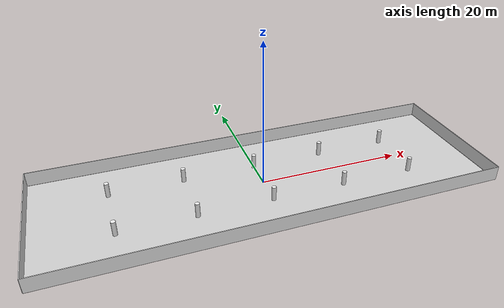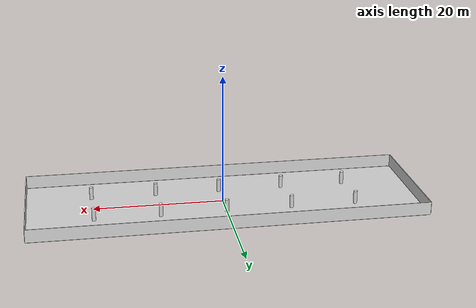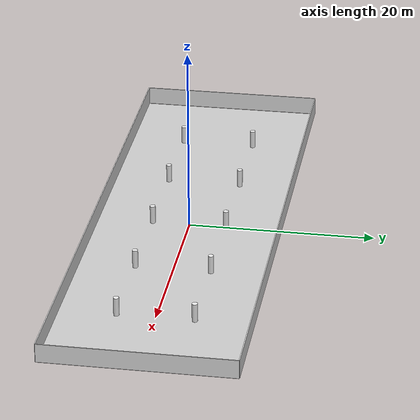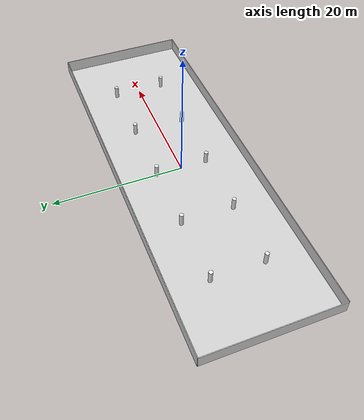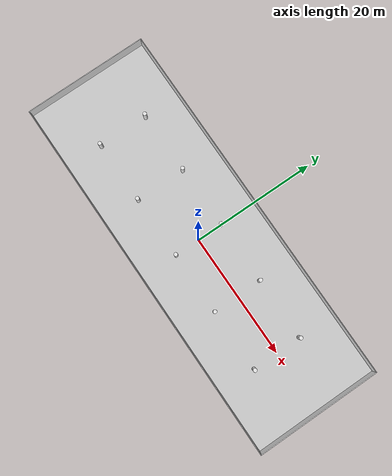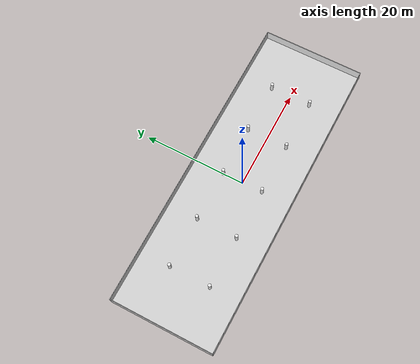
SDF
<sdf version="1.7">
 <world name="simple">
  <gravity>0.0 0.0 -9.81</gravity>
  <physics type="ode">
   <real_time_update_rate>1000</real_time_update_rate>
   <max_step_size>0.001</max_step_size>
   <real_time_factor>1.0</real_time_factor>
   <ode>
    <solver><iters>100</iters></solver>
    <constraints><contact_surface_layer>0.01</contact_surface_layer></constraints>
   </ode>
  </physics>
  <scene><shadows>true</shadows><grid>false</grid></scene>
  <include><name>light_1</name><uri>model://light</uri><pose>20 0 7 0 0 0</pose></include>
  <include><name>light_2</name><uri>model://light</uri><pose>0 0 7 0 0 0</pose></include>
  <include><name>light_3</name><uri>model://light</uri><pose>-20 0 7 0 0 0</pose></include>
  <include><uri>model://atrium</uri></include>
 </world>
</sdf>

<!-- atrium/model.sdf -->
<sdf version="1.7">
  <model name="plane">
    <static>true</static>
    <link name="floor">
      <collision name="collision">
        <geometry>
          <plane>
            <normal>0 0 1</normal>
            <size>60 20</size>
          </plane>
        </geometry>
        <surface>
          <friction>
            <ode>
              <mu>100.0</mu>
              <mu2>100.0</mu2>
            </ode>
          </friction>
        </surface>
      </collision>
      <visual name="visual">
        <cast_shadows>true</cast_shadows>
        <geometry>
          <plane>
            <normal>0 0 1</normal>
            <size>60 20</size>
          </plane>
        </geometry>
        <material>
          <script>
            <uri>model://atrium</uri>
            <name>Truck/Ground</name>
          </script>
        </material>
      </visual>
    </link>
    <link name="wall_north">
      <pose>30 0 1 0 0 0</pose>
      <collision name="collision">
        <geometry>
          <box>
            <size>0.10 20 2</size>
          </box>
        </geometry>
      </collision>
      <visual name="visual">
        <cast_shadows>true</cast_shadows>
        <geometry>
          <box>
            <size>0.10 20 2</size>
          </box>
        </geometry>
        <material>
          <script>
            <uri>file://media/materials/scripts/gazebo.material</uri>
            <name>Gazebo/White</name>
          </script>
        </material>
      </visual>
    </link>
    <link name="wall_south">
      <pose>-30 0 1 0 0 0</pose>
      <collision name="collision">
        <geometry>
          <box>
            <size>0.10 20 2</size>
          </box>
        </geometry>
      </collision>
      <visual name="visual">
        <cast_shadows>true</cast_shadows>
        <geometry>
          <box>
            <size>0.10 20 2</size>
          </box>
        </geometry>
        <material>
          <script>
            <uri>file://media/materials/scripts/gazebo.material</uri>
            <name>Gazebo/White</name>
          </script>
        </material>
      </visual>
    </link>
    <link name="wall_east">
      <pose>0 10 1 0 0 0</pose>
      <collision name="collision">
        <geometry>
          <box>
            <size>60.0 0.1 2.0</size>
          </box>
        </geometry>
      </collision>
      <visual name="visual">
        <cast_shadows>true</cast_shadows>
        <geometry>
          <box>
            <size>60.0 0.1 2.0</size>
          </box>
        </geometry>
        <material>
          <script>
            <uri>file://media/materials/scripts/gazebo.material</uri>
            <name>Gazebo/White</name>
          </script>
        </material>
      </visual>
    </link>
    <link name="wall_west">
      <pose>0 -10 1 0 0 0</pose>
      <collision name="collision">
        <geometry>
          <box>
            <size>60.0 0.1 2.0</size>
          </box>
        </geometry>
      </collision>
      <visual name="visual">
        <cast_shadows>true</cast_shadows>
        <geometry>
          <box>
            <size>60.0 0.1 2.0</size>
          </box>
        </geometry>
        <material>
          <script>
            <uri>file://media/materials/scripts/gazebo.material</uri>
            <name>Gazebo/White</name>
          </script>
        </material>
      </visual>
    </link>
    <link name="column_11">
      <pose>20 4 1 0 0 0</pose>
      <collision name="collision">
        <geometry>
          <cylinder>
            <length>2</length>
            <radius>0.3</radius>
          </cylinder>
        </geometry>
      </collision>
      <visual name="visual">
        <cast_shadows>true</cast_shadows>
        <geometry>
          <cylinder>
            <length>2</length>
            <radius>0.3</radius>
          </cylinder>
        </geometry>
        <material>
          <script>
            <uri>file://media/materials/scripts/gazebo.material</uri>
            <name>Gazebo/White</name>
          </script>
        </material>
      </visual>
    </link>
    <link name="column_12">
      <pose>20 -4 1 0 0 0</pose>
      <collision name="collision">
        <geometry>
          <cylinder>
            <length>2</length>
            <radius>0.3</radius>
          </cylinder>
        </geometry>
      </collision>
      <visual name="visual">
        <cast_shadows>true</cast_shadows>
        <geometry>
          <cylinder>
            <length>2</length>
            <radius>0.3</radius>
          </cylinder>
        </geometry>
        <material>
          <script>
            <uri>file://media/materials/scripts/gazebo.material</uri>
            <name>Gazebo/White</name>
          </script>
        </material>
      </visual>
    </link>
    <link name="column_21">
      <pose>10 4 1 0 0 0</pose>
      <collision name="collision">
        <geometry>
          <cylinder>
            <length>2</length>
            <radius>0.3</radius>
          </cylinder>
        </geometry>
      </collision>
      <visual name="visual">
        <cast_shadows>true</cast_shadows>
        <geometry>
          <cylinder>
            <length>2</length>
            <radius>0.3</radius>
          </cylinder>
        </geometry>
        <material>
          <script>
            <uri>file://media/materials/scripts/gazebo.material</uri>
            <name>Gazebo/White</name>
          </script>
        </material>
      </visual>
    </link>
    <link name="column_22">
      <pose>10 -4 1 0 0 0</pose>
      <collision name="collision">
        <geometry>
          <cylinder>
            <length>2</length>
            <radius>0.3</radius>
          </cylinder>
        </geometry>
      </collision>
      <visual name="visual">
        <cast_shadows>true</cast_shadows>
        <geometry>
          <cylinder>
            <length>2</length>
            <radius>0.3</radius>
          </cylinder>
        </geometry>
        <material>
          <script>
            <uri>file://media/materials/scripts/gazebo.material</uri>
            <name>Gazebo/White</name>
          </script>
        </material>
      </visual>
    </link>
    <link name="column_31">
      <pose>0 4 1 0 0 0</pose>
      <collision name="collision">
        <geometry>
          <cylinder>
            <length>2</length>
            <radius>0.3</radius>
          </cylinder>
        </geometry>
      </collision>
      <visual name="visual">
        <cast_shadows>true</cast_shadows>
        <geometry>
          <cylinder>
            <length>2</length>
            <radius>0.3</radius>
          </cylinder>
        </geometry>
        <material>
          <script>
            <uri>file://media/materials/scripts/gazebo.material</uri>
            <name>Gazebo/White</name>
          </script>
        </material>
      </visual>
    </link>
    <link name="column_32">
      <pose>0 -4 1 0 0 0</pose>
      <collision name="collision">
        <geometry>
          <cylinder>
            <length>2</length>
            <radius>0.3</radius>
          </cylinder>
        </geometry>
      </collision>
      <visual name="visual">
        <cast_shadows>true</cast_shadows>
        <geometry>
          <cylinder>
            <length>2</length>
            <radius>0.3</radius>
          </cylinder>
        </geometry>
        <material>
          <script>
            <uri>file://media/materials/scripts/gazebo.material</uri>
            <name>Gazebo/White</name>
          </script>
        </material>
      </visual>
    </link>
    <link name="column_41">
      <pose>-10 4 1 0 0 0</pose>
      <collision name="collision">
        <geometry>
          <cylinder>
            <length>2</length>
            <radius>0.3</radius>
          </cylinder>
        </geometry>
      </collision>
      <visual name="visual">
        <cast_shadows>true</cast_shadows>
        <geometry>
          <cylinder>
            <length>2</length>
            <radius>0.3</radius>
          </cylinder>
        </geometry>
        <material>
          <script>
            <uri>file://media/materials/scripts/gazebo.material</uri>
            <name>Gazebo/White</name>
          </script>
        </material>
      </visual>
    </link>
    <link name="column_42">
      <pose>-10 -4 1 0 0 0</pose>
      <collision name="collision">
        <geometry>
          <cylinder>
            <length>2</length>
            <radius>0.3</radius>
          </cylinder>
        </geometry>
      </collision>
      <visual name="visual">
        <cast_shadows>true</cast_shadows>
        <geometry>
          <cylinder>
            <length>2</length>
            <radius>0.3</radius>
          </cylinder>
        </geometry>
        <material>
          <script>
            <uri>file://media/materials/scripts/gazebo.material</uri>
            <name>Gazebo/White</name>
          </script>
        </material>
      </visual>
    </link>
    <link name="column_51">
      <pose>-20 4 1 0 0 0</pose>
      <collision name="collision">
        <geometry>
          <cylinder>
            <length>2</length>
            <radius>0.3</radius>
          </cylinder>
        </geometry>
      </collision>
      <visual name="visual">
        <cast_shadows>true</cast_shadows>
        <geometry>
          <cylinder>
            <length>2</length>
            <radius>0.3</radius>
          </cylinder>
        </geometry>
        <material>
          <script>
            <uri>file://media/materials/scripts/gazebo.material</uri>
            <name>Gazebo/White</name>
          </script>
        </material>
      </visual>
    </link>
    <link name="column_52">
      <pose>-20 -4 1 0 0 0</pose>
      <collision name="collision">
        <geometry>
          <cylinder>
            <length>2</length>
            <radius>0.3</radius>
          </cylinder>
        </geometry>
      </collision>
      <visual name="visual">
        <cast_shadows>true</cast_shadows>
        <geometry>
          <cylinder>
            <length>2</length>
            <radius>0.3</radius>
          </cylinder>
        </geometry>
        <material>
          <script>
            <uri>file://media/materials/scripts/gazebo.material</uri>
            <name>Gazebo/White</name>
          </script>
        </material>
      </visual>
    </link>
  </model>
</sdf>
